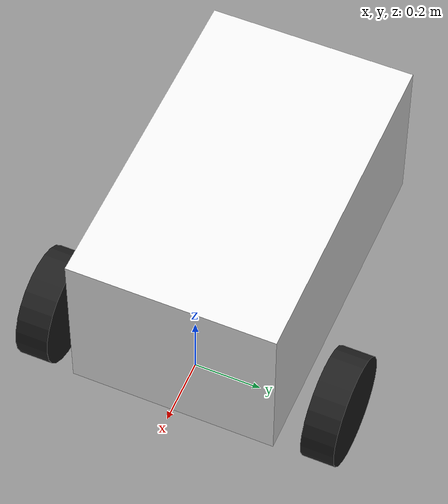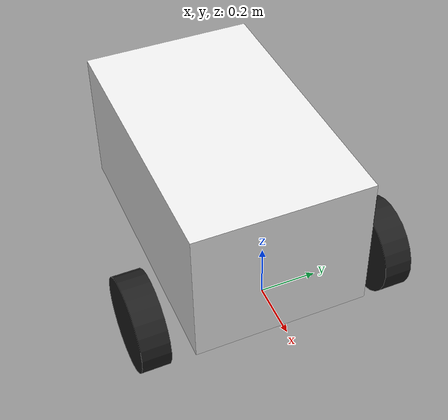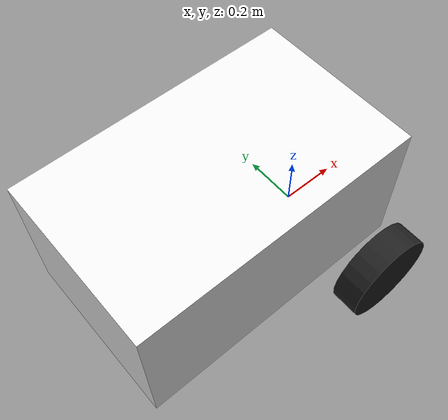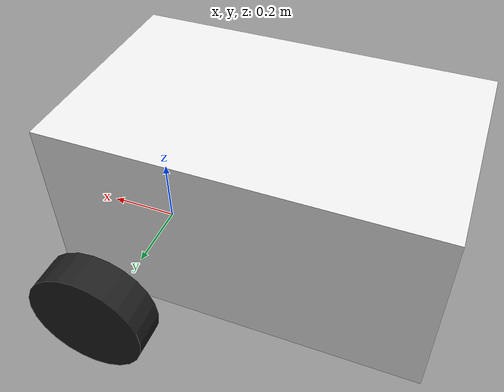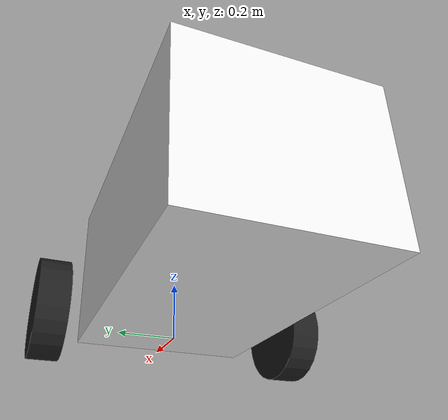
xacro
<?xml version="1.0"?>
<!-- Basic differential drive mobile base -->
<robot xmlns:xacro="http://www.ros.org/wiki/xacro" name="diffdrive_robot">
  <xacro:arg name="prefix" default="" />
  <xacro:arg name="use_mock_hardware" default="false" />

  <xacro:include filename="$(find description)/urdf/diffbot_description.urdf.xacro" />

  <!-- Import Rviz colors -->
  <xacro:include filename="$(find description)/urdf/diffbot.materials.xacro" />

  <!-- Import diffbot ros2_control description -->
  <xacro:include filename="$(find description)/urdf/diffbot.ros2_control.xacro" />

  <xacro:diffbot prefix="$(arg prefix)" />

  <xacro:diffbot_ros2_control
    name="DiffBot" prefix="$(arg prefix)" use_mock_hardware="$(arg use_mock_hardware)"/>

</robot>

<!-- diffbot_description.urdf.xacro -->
<robot xmlns:xacro="http://www.ros.org/wiki/xacro">

<xacro:macro name="diffbot" params="prefix">

<!-- Constants for robot dimensions -->
<xacro:property name="PI" value="3.1415926535897931"/>

<!-- Constants for robot dimensions -->
<xacro:property name="base_mass" value="0.3" />
<xacro:property name="wheel_mass" value="0.3" />
<xacro:property name="base_width" value="0.62" />
<xacro:property name="base_length" value="1.016" />
<xacro:property name="base_height" value="0.51" />
<xacro:property name="wheel_len" value="0.1" />
<xacro:property name="wheel_radius" value="0.165" />
<xacro:property name="wheel_yoff" value="0.13"/>
<xacro:property name="wheel_zoff" value="0.054"/>
<xacro:property name="base_top_width" value="0.749"/>
<xacro:property name="base_top_height" value="0.305"/>

<xacro:include filename="inertial_macros.xacro" />

<link name="${prefix}base_link">
</link>

<joint name="base_footprint_joint" type="fixed">
  <parent link="base_link"/>
  <child link="base_footprint"/>
  <origin xyz="-0.35 0 ${-wheel_radius+wheel_zoff}"/>
</joint>

<link name="base_footprint">
</link>

<joint name="${prefix}chassis_joint" type="fixed">
  <parent link="${prefix}base_link"/>
  <child link="${prefix}chassis"/>
  <origin xyz="-0.85 0 0"/>
</joint>

<link name="${prefix}chassis">
  <visual>
    <origin xyz="${base_length/2} 0 ${base_height/2}" rpy="0 0 0"/>
    <geometry>
    <box size="${base_length} ${base_width} ${base_height}" />
    </geometry>
    <material name="white"/>
  </visual>

  <collision>
    <origin xyz="${base_length/2} 0 ${base_height/2}" rpy="0 0 0"/>
    <geometry>
    <box size="${base_length} ${base_width} ${base_height}" />
    </geometry>
  </collision>

  <xacro:inertial_box mass="0.5" x="${base_length}" y="${base_width}" z="${base_height}"> <!-- inertial macro -->
    <origin xyz="${base_length/2} 0 ${base_height/2}" rpy="0 0 0"/>
  </xacro:inertial_box>
</link>

<joint name="${prefix}left_wheel_joint" type="continuous">
  <parent link="${prefix}base_link"/>
  <child link="${prefix}left_wheel"/>
  <origin xyz="0 ${base_width/2+wheel_yoff} ${wheel_zoff}" rpy="-${pi/2} 0 0"/>
  <axis xyz="0 0 1"/>
  <dynamics damping="0.2"/>
</joint>

    <!-- left wheel Link -->
<link name="${prefix}left_wheel">
  <collision>
    <origin xyz="0 0 0"/>
    <geometry>
      <cylinder length="${wheel_len}" radius="${wheel_radius}"/>
    </geometry>
  </collision>

  <visual>
    <origin xyz="0 0 0"/>
    <geometry>
      <cylinder length="${wheel_len}" radius="${wheel_radius}"/>
    </geometry>
    <material name="black"/>
  </visual>

  <inertial>
    <origin xyz="0 0 0" rpy="${PI/2} 0 0"/>
    <mass value="${wheel_mass}"/>
    <inertia
      ixx="${wheel_mass / 12.0 * (3*wheel_radius*wheel_radius + wheel_len*wheel_len)}" ixy="0.0" ixz="0.0"
      iyy="${wheel_mass / 12.0 * (3*wheel_radius*wheel_radius + wheel_len*wheel_len)}" iyz="0.0"
      izz="${wheel_mass / 2.0 * wheel_radius*wheel_radius}"/>
    </inertial>
  </link>

    <joint name="${prefix}right_wheel_joint" type="continuous">
      <parent link="${prefix}base_link"/>
      <child link="${prefix}right_wheel"/>
      <origin xyz="0 ${-(base_width/2+wheel_yoff)} ${wheel_zoff}" rpy="${pi/2} 0 0"/>
      <axis xyz="0 0 -1"/>
      <dynamics damping="0.1"/>
    </joint>

    <!-- right wheel Link -->
    <link name="${prefix}right_wheel">
      <collision>
        <geometry>
          <cylinder length="${wheel_len}" radius="${wheel_radius}"/>
        </geometry>
      </collision>

      <visual>
        <geometry>
          <cylinder length="${wheel_len}" radius="${wheel_radius}"/>
        </geometry>
        <material name="black"/>
      </visual>

      <inertial>
        <origin xyz="0 0 0" rpy="${PI/2} 0 0"/>
        <mass value="${wheel_mass}"/>
        <inertia
          ixx="${wheel_mass / 12.0 * (3*wheel_radius*wheel_radius + wheel_len*wheel_len)}" ixy="0.0" ixz="0.0"
          iyy="${wheel_mass / 12.0 * (3*wheel_radius*wheel_radius + wheel_len*wheel_len)}" iyz="0.0"
          izz="${wheel_mass / 2.0 * wheel_radius*wheel_radius}"/>
        </inertial> <!-- for some reason, the inertial cylinder macro was not parsing -->
      </link>
  </xacro:macro>

</robot>
